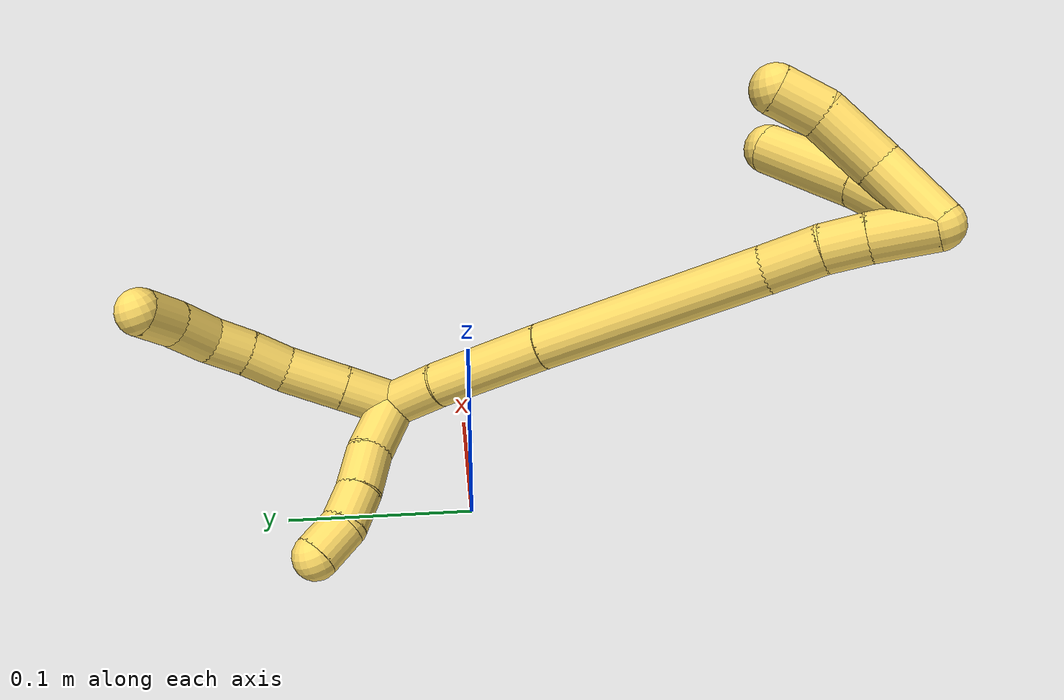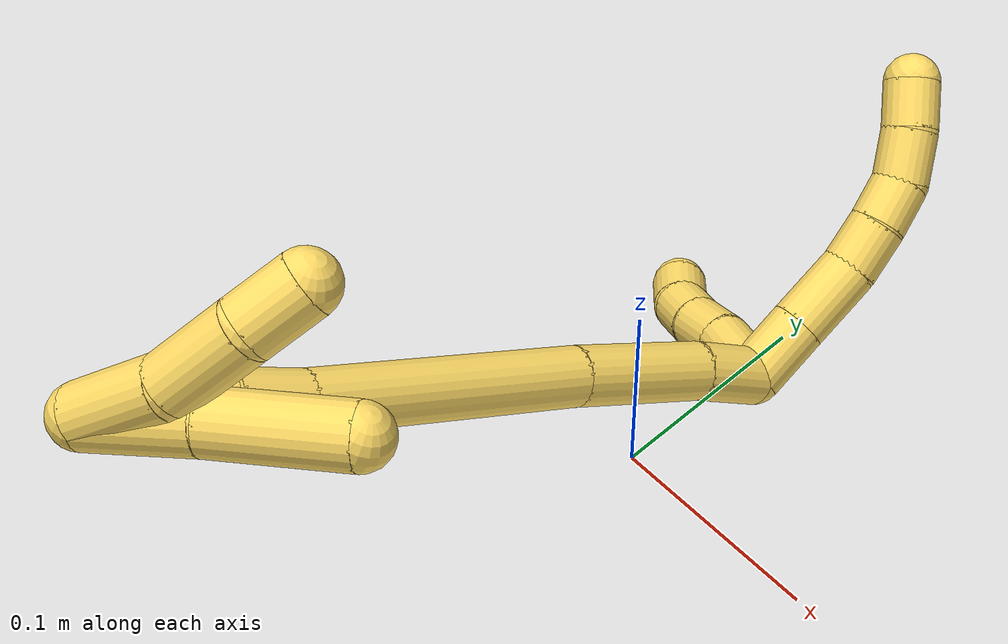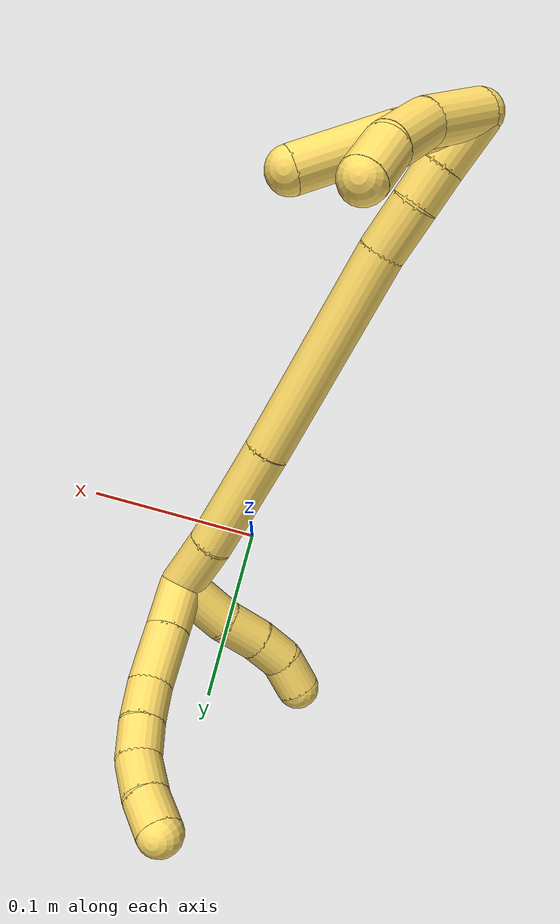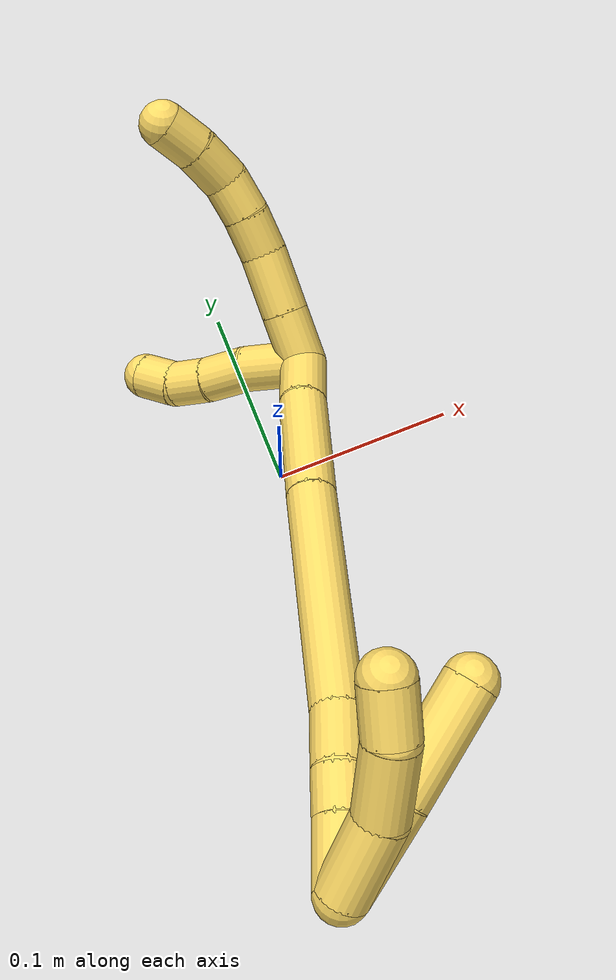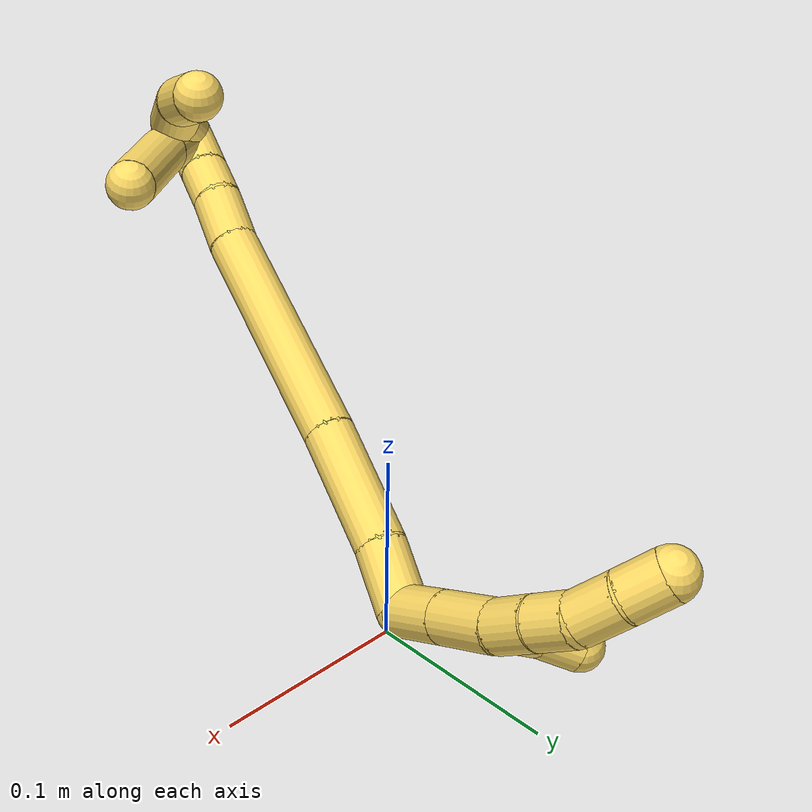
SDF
<sdf version="1.7">
 <world name="default">
  <model name="5">
   <static>0</static>
   <link name="5">
    <collision name="collision-cylinder-e_1_2_8">
     <pose>-0.003847 0.010294 0.009465 -0.827285 -0.268438 0.11841</pose>
     <geometry><cylinder><radius>0.0125</radius><length>0.029007</length></cylinder></geometry>
     <surface>
      <friction><ode><mu>1.16</mu><mu2>1.16</mu2><slip1>0</slip1><slip2>0</slip2></ode></friction>
      <contact><ode><kp>1e+06</kp><kd>1</kd><max_vel>0</max_vel><min_depth>0.001</min_depth></ode></contact>
     </surface>
    </collision>
    <visual name="visual-cylinder-e_1_2_8">
     <pose>-0.003847 0.010294 0.009465 -0.827285 -0.268438 0.11841</pose>
     <geometry><cylinder><radius>0.0125</radius><length>0.029007</length></cylinder></geometry>
     <material><ambient>1 0.858824 0.4 1</ambient></material>
    </visual>
    <collision name="collision-cylinder-e_2_8_9">
     <pose>-0.012025 0.032488 0.029749 -0.833037 -0.263058 0.11692</pose>
     <geometry><cylinder><radius>0.0125</radius><length>0.033312</length></cylinder></geometry>
     <surface>
      <friction><ode><mu>1.16</mu><mu2>1.16</mu2><slip1>0</slip1><slip2>0</slip2></ode></friction>
      <contact><ode><kp>1e+06</kp><kd>1</kd><max_vel>0</max_vel><min_depth>0.001</min_depth></ode></contact>
     </surface>
    </collision>
    <visual name="visual-cylinder-e_2_8_9">
     <pose>-0.012025 0.032488 0.029749 -0.833037 -0.263058 0.11692</pose>
     <geometry><cylinder><radius>0.0125</radius><length>0.033312</length></cylinder></geometry>
     <material><ambient>1 0.858824 0.4 1</ambient></material>
    </visual>
    <collision name="collision-cylinder-e_3_9_10">
     <pose>-0.020349 0.050843 0.048805 -0.664521 -0.364538 0.127025</pose>
     <geometry><cylinder><radius>0.0125</radius><length>0.022401</length></cylinder></geometry>
     <surface>
      <friction><ode><mu>1.16</mu><mu2>1.16</mu2><slip1>0</slip1><slip2>0</slip2></ode></friction>
      <contact><ode><kp>1e+06</kp><kd>1</kd><max_vel>0</max_vel><min_depth>0.001</min_depth></ode></contact>
     </surface>
    </collision>
    <visual name="visual-cylinder-e_3_9_10">
     <pose>-0.020349 0.050843 0.048805 -0.664521 -0.364538 0.127025</pose>
     <geometry><cylinder><radius>0.0125</radius><length>0.022401</length></cylinder></geometry>
     <material><ambient>1 0.858824 0.4 1</ambient></material>
    </visual>
    <collision name="collision-cylinder-e_4_10_11">
     <pose>-0.029009 0.063325 0.064172 -0.701973 -0.463567 0.172411</pose>
     <geometry><cylinder><radius>0.0125</radius><length>0.020876</length></cylinder></geometry>
     <surface>
      <friction><ode><mu>1.16</mu><mu2>1.16</mu2><slip1>0</slip1><slip2>0</slip2></ode></friction>
      <contact><ode><kp>1e+06</kp><kd>1</kd><max_vel>0</max_vel><min_depth>0.001</min_depth></ode></contact>
     </surface>
    </collision>
    <visual name="visual-cylinder-e_4_10_11">
     <pose>-0.029009 0.063325 0.064172 -0.701973 -0.463567 0.172411</pose>
     <geometry><cylinder><radius>0.0125</radius><length>0.020876</length></cylinder></geometry>
     <material><ambient>1 0.858824 0.4 1</ambient></material>
    </visual>
    <collision name="collision-cylinder-e_5_11_12">
     <pose>-0.041065 0.072842 0.079548 -0.400202 -0.689809 0.145471</pose>
     <geometry><cylinder><radius>0.0125</radius><length>0.023219</length></cylinder></geometry>
     <surface>
      <friction><ode><mu>1.16</mu><mu2>1.16</mu2><slip1>0</slip1><slip2>0</slip2></ode></friction>
      <contact><ode><kp>1e+06</kp><kd>1</kd><max_vel>0</max_vel><min_depth>0.001</min_depth></ode></contact>
     </surface>
    </collision>
    <visual name="visual-cylinder-e_5_11_12">
     <pose>-0.041065 0.072842 0.079548 -0.400202 -0.689809 0.145471</pose>
     <geometry><cylinder><radius>0.0125</radius><length>0.023219</length></cylinder></geometry>
     <material><ambient>1 0.858824 0.4 1</ambient></material>
    </visual>
    <collision name="collision-cylinder-e_6_12_6">
     <pose>-0.056354 0.078978 0.094335 -0.384611 -0.841933 0.173918</pose>
     <geometry><cylinder><radius>0.0125</radius><length>0.021185</length></cylinder></geometry>
     <surface>
      <friction><ode><mu>1.16</mu><mu2>1.16</mu2><slip1>0</slip1><slip2>0</slip2></ode></friction>
      <contact><ode><kp>1e+06</kp><kd>1</kd><max_vel>0</max_vel><min_depth>0.001</min_depth></ode></contact>
     </surface>
    </collision>
    <visual name="visual-cylinder-e_6_12_6">
     <pose>-0.056354 0.078978 0.094335 -0.384611 -0.841933 0.173918</pose>
     <geometry><cylinder><radius>0.0125</radius><length>0.021185</length></cylinder></geometry>
     <material><ambient>1 0.858824 0.4 1</ambient></material>
    </visual>
    <collision name="collision-cylinder-e_1_2_13">
     <pose>-0.014411 0.005677 -0.006998 -2.46003 -1.01201 2.00304</pose>
     <geometry><cylinder><radius>0.0125</radius><length>0.033993</length></cylinder></geometry>
     <surface>
      <friction><ode><mu>1.16</mu><mu2>1.16</mu2><slip1>0</slip1><slip2>0</slip2></ode></friction>
      <contact><ode><kp>1e+06</kp><kd>1</kd><max_vel>0</max_vel><min_depth>0.001</min_depth></ode></contact>
     </surface>
    </collision>
    <visual name="visual-cylinder-e_1_2_13">
     <pose>-0.014411 0.005677 -0.006998 -2.46003 -1.01201 2.00304</pose>
     <geometry><cylinder><radius>0.0125</radius><length>0.033993</length></cylinder></geometry>
     <material><ambient>1 0.858824 0.4 1</ambient></material>
    </visual>
    <collision name="collision-cylinder-e_2_13_14">
     <pose>-0.03897 0.013832 -0.020206 -2.76187 -0.988077 2.45612</pose>
     <geometry><cylinder><radius>0.0125</radius><length>0.024305</length></cylinder></geometry>
     <surface>
      <friction><ode><mu>1.16</mu><mu2>1.16</mu2><slip1>0</slip1><slip2>0</slip2></ode></friction>
      <contact><ode><kp>1e+06</kp><kd>1</kd><max_vel>0</max_vel><min_depth>0.001</min_depth></ode></contact>
     </surface>
    </collision>
    <visual name="visual-cylinder-e_2_13_14">
     <pose>-0.03897 0.013832 -0.020206 -2.76187 -0.988077 2.45612</pose>
     <geometry><cylinder><radius>0.0125</radius><length>0.024305</length></cylinder></geometry>
     <material><ambient>1 0.858824 0.4 1</ambient></material>
    </visual>
    <collision name="collision-cylinder-e_3_14_15">
     <pose>-0.057796 0.019599 -0.031078 -2.52721 -0.989456 2.07843</pose>
     <geometry><cylinder><radius>0.0125</radius><length>0.020771</length></cylinder></geometry>
     <surface>
      <friction><ode><mu>1.16</mu><mu2>1.16</mu2><slip1>0</slip1><slip2>0</slip2></ode></friction>
      <contact><ode><kp>1e+06</kp><kd>1</kd><max_vel>0</max_vel><min_depth>0.001</min_depth></ode></contact>
     </surface>
    </collision>
    <visual name="visual-cylinder-e_3_14_15">
     <pose>-0.057796 0.019599 -0.031078 -2.52721 -0.989456 2.07843</pose>
     <geometry><cylinder><radius>0.0125</radius><length>0.020771</length></cylinder></geometry>
     <material><ambient>1 0.858824 0.4 1</ambient></material>
    </visual>
    <collision name="collision-cylinder-e_4_15_5">
     <pose>-0.074299 0.029205 -0.038635 -2.00069 -0.844374 1.22161</pose>
     <geometry><cylinder><radius>0.0125</radius><length>0.020931</length></cylinder></geometry>
     <surface>
      <friction><ode><mu>1.16</mu><mu2>1.16</mu2><slip1>0</slip1><slip2>0</slip2></ode></friction>
      <contact><ode><kp>1e+06</kp><kd>1</kd><max_vel>0</max_vel><min_depth>0.001</min_depth></ode></contact>
     </surface>
    </collision>
    <visual name="visual-cylinder-e_4_15_5">
     <pose>-0.074299 0.029205 -0.038635 -2.00069 -0.844374 1.22161</pose>
     <geometry><cylinder><radius>0.0125</radius><length>0.020931</length></cylinder></geometry>
     <material><ambient>1 0.858824 0.4 1</ambient></material>
    </visual>
    <collision name="collision-cylinder-e_1_2_16">
     <pose>-0.002952 -0.015741 0.002865 1.39077 -0.182436 -0.152358</pose>
     <geometry><cylinder><radius>0.0125</radius><length>0.032539</length></cylinder></geometry>
     <surface>
      <friction><ode><mu>1.16</mu><mu2>1.16</mu2><slip1>0</slip1><slip2>0</slip2></ode></friction>
      <contact><ode><kp>1e+06</kp><kd>1</kd><max_vel>0</max_vel><min_depth>0.001</min_depth></ode></contact>
     </surface>
    </collision>
    <visual name="visual-cylinder-e_1_2_16">
     <pose>-0.002952 -0.015741 0.002865 1.39077 -0.182436 -0.152358</pose>
     <geometry><cylinder><radius>0.0125</radius><length>0.032539</length></cylinder></geometry>
     <material><ambient>1 0.858824 0.4 1</ambient></material>
    </visual>
    <collision name="collision-cylinder-e_2_16_17">
     <pose>-0.009347 -0.06294 0.009282 1.45834 -0.108336 -0.096809</pose>
     <geometry><cylinder><radius>0.0125</radius><length>0.063691</length></cylinder></geometry>
     <surface>
      <friction><ode><mu>1.16</mu><mu2>1.16</mu2><slip1>0</slip1><slip2>0</slip2></ode></friction>
      <contact><ode><kp>1e+06</kp><kd>1</kd><max_vel>0</max_vel><min_depth>0.001</min_depth></ode></contact>
     </surface>
    </collision>
    <visual name="visual-cylinder-e_2_16_17">
     <pose>-0.009347 -0.06294 0.009282 1.45834 -0.108336 -0.096809</pose>
     <geometry><cylinder><radius>0.0125</radius><length>0.063691</length></cylinder></geometry>
     <material><ambient>1 0.858824 0.4 1</ambient></material>
    </visual>
    <collision name="collision-cylinder-e_3_17_18">
     <pose>-0.017806 -0.154991 0.017763 1.48965 -0.082327 -0.07591</pose>
     <geometry><cylinder><radius>0.0125</radius><length>0.121997</length></cylinder></geometry>
     <surface>
      <friction><ode><mu>1.16</mu><mu2>1.16</mu2><slip1>0</slip1><slip2>0</slip2></ode></friction>
      <contact><ode><kp>1e+06</kp><kd>1</kd><max_vel>0</max_vel><min_depth>0.001</min_depth></ode></contact>
     </surface>
    </collision>
    <visual name="visual-cylinder-e_3_17_18">
     <pose>-0.017806 -0.154991 0.017763 1.48965 -0.082327 -0.07591</pose>
     <geometry><cylinder><radius>0.0125</radius><length>0.121997</length></cylinder></geometry>
     <material><ambient>1 0.858824 0.4 1</ambient></material>
    </visual>
    <collision name="collision-cylinder-e_4_18_19">
     <pose>-0.025243 -0.229784 0.024359 1.45383 -0.1677 -0.149221</pose>
     <geometry><cylinder><radius>0.0125</radius><length>0.029004</length></cylinder></geometry>
     <surface>
      <friction><ode><mu>1.16</mu><mu2>1.16</mu2><slip1>0</slip1><slip2>0</slip2></ode></friction>
      <contact><ode><kp>1e+06</kp><kd>1</kd><max_vel>0</max_vel><min_depth>0.001</min_depth></ode></contact>
     </surface>
    </collision>
    <visual name="visual-cylinder-e_4_18_19">
     <pose>-0.025243 -0.229784 0.024359 1.45383 -0.1677 -0.149221</pose>
     <geometry><cylinder><radius>0.0125</radius><length>0.029004</length></cylinder></geometry>
     <material><ambient>1 0.858824 0.4 1</ambient></material>
    </visual>
    <collision name="collision-cylinder-e_5_19_20">
     <pose>-0.029253 -0.254758 0.026025 1.57108 -0.146536 -0.146577</pose>
     <geometry><cylinder><radius>0.0125</radius><length>0.02178</length></cylinder></geometry>
     <surface>
      <friction><ode><mu>1.16</mu><mu2>1.16</mu2><slip1>0</slip1><slip2>0</slip2></ode></friction>
      <contact><ode><kp>1e+06</kp><kd>1</kd><max_vel>0</max_vel><min_depth>0.001</min_depth></ode></contact>
     </surface>
    </collision>
    <visual name="visual-cylinder-e_5_19_20">
     <pose>-0.029253 -0.254758 0.026025 1.57108 -0.146536 -0.146577</pose>
     <geometry><cylinder><radius>0.0125</radius><length>0.02178</length></cylinder></geometry>
     <material><ambient>1 0.858824 0.4 1</ambient></material>
    </visual>
    <collision name="collision-cylinder-e_6_20_1">
     <pose>-0.033472 -0.280785 0.025308 1.61757 -0.170482 -0.178606</pose>
     <geometry><cylinder><radius>0.0125</radius><length>0.030989</length></cylinder></geometry>
     <surface>
      <friction><ode><mu>1.16</mu><mu2>1.16</mu2><slip1>0</slip1><slip2>0</slip2></ode></friction>
      <contact><ode><kp>1e+06</kp><kd>1</kd><max_vel>0</max_vel><min_depth>0.001</min_depth></ode></contact>
     </surface>
    </collision>
    <visual name="visual-cylinder-e_6_20_1">
     <pose>-0.033472 -0.280785 0.025308 1.61757 -0.170482 -0.178606</pose>
     <geometry><cylinder><radius>0.0125</radius><length>0.030989</length></cylinder></geometry>
     <material><ambient>1 0.858824 0.4 1</ambient></material>
    </visual>
    <collision name="collision-cylinder-e_1_1_21">
     <pose>-0.027832 -0.28719 0.040118 -0.518008 0.433446 -0.116544</pose>
     <geometry><cylinder><radius>0.0125</radius><length>0.039378</length></cylinder></geometry>
     <surface>
      <friction><ode><mu>1.16</mu><mu2>1.16</mu2><slip1>0</slip1><slip2>0</slip2></ode></friction>
      <contact><ode><kp>1e+06</kp><kd>1</kd><max_vel>0</max_vel><min_depth>0.001</min_depth></ode></contact>
     </surface>
    </collision>
    <visual name="visual-cylinder-e_1_1_21">
     <pose>-0.027832 -0.28719 0.040118 -0.518008 0.433446 -0.116544</pose>
     <geometry><cylinder><radius>0.0125</radius><length>0.039378</length></cylinder></geometry>
     <material><ambient>1 0.858824 0.4 1</ambient></material>
    </visual>
    <collision name="collision-cylinder-e_2_21_22">
     <pose>-0.017147 -0.269336 0.070783 -0.536615 0.136245 -0.037512</pose>
     <geometry><cylinder><radius>0.0125</radius><length>0.035564</length></cylinder></geometry>
     <surface>
      <friction><ode><mu>1.16</mu><mu2>1.16</mu2><slip1>0</slip1><slip2>0</slip2></ode></friction>
      <contact><ode><kp>1e+06</kp><kd>1</kd><max_vel>0</max_vel><min_depth>0.001</min_depth></ode></contact>
     </surface>
    </collision>
    <visual name="visual-cylinder-e_2_21_22">
     <pose>-0.017147 -0.269336 0.070783 -0.536615 0.136245 -0.037512</pose>
     <geometry><cylinder><radius>0.0125</radius><length>0.035564</length></cylinder></geometry>
     <material><ambient>1 0.858824 0.4 1</ambient></material>
    </visual>
    <collision name="collision-cylinder-e_3_22_4">
     <pose>-0.014877 -0.25154 0.094851 -0.777702 -0.011595 0.00475</pose>
     <geometry><cylinder><radius>0.0125</radius><length>0.025058</length></cylinder></geometry>
     <surface>
      <friction><ode><mu>1.16</mu><mu2>1.16</mu2><slip1>0</slip1><slip2>0</slip2></ode></friction>
      <contact><ode><kp>1e+06</kp><kd>1</kd><max_vel>0</max_vel><min_depth>0.001</min_depth></ode></contact>
     </surface>
    </collision>
    <visual name="visual-cylinder-e_3_22_4">
     <pose>-0.014877 -0.25154 0.094851 -0.777702 -0.011595 0.00475</pose>
     <geometry><cylinder><radius>0.0125</radius><length>0.025058</length></cylinder></geometry>
     <material><ambient>1 0.858824 0.4 1</ambient></material>
    </visual>
    <collision name="collision-cylinder-e_1_1_23">
     <pose>-0.022245 -0.282256 0.03596 -0.881154 0.659674 -0.320059</pose>
     <geometry><cylinder><radius>0.0125</radius><length>0.045216</length></cylinder></geometry>
     <surface>
      <friction><ode><mu>1.16</mu><mu2>1.16</mu2><slip1>0</slip1><slip2>0</slip2></ode></friction>
      <contact><ode><kp>1e+06</kp><kd>1</kd><max_vel>0</max_vel><min_depth>0.001</min_depth></ode></contact>
     </surface>
    </collision>
    <visual name="visual-cylinder-e_1_1_23">
     <pose>-0.022245 -0.282256 0.03596 -0.881154 0.659674 -0.320059</pose>
     <geometry><cylinder><radius>0.0125</radius><length>0.045216</length></cylinder></geometry>
     <material><ambient>1 0.858824 0.4 1</ambient></material>
    </visual>
    <collision name="collision-cylinder-e_2_23_3">
     <pose>0.008614 -0.250405 0.058935 -0.999753 0.669703 -0.375587</pose>
     <geometry><cylinder><radius>0.0125</radius><length>0.054784</length></cylinder></geometry>
     <surface>
      <friction><ode><mu>1.16</mu><mu2>1.16</mu2><slip1>0</slip1><slip2>0</slip2></ode></friction>
      <contact><ode><kp>1e+06</kp><kd>1</kd><max_vel>0</max_vel><min_depth>0.001</min_depth></ode></contact>
     </surface>
    </collision>
    <visual name="visual-cylinder-e_2_23_3">
     <pose>0.008614 -0.250405 0.058935 -0.999753 0.669703 -0.375587</pose>
     <geometry><cylinder><radius>0.0125</radius><length>0.054784</length></cylinder></geometry>
     <material><ambient>1 0.858824 0.4 1</ambient></material>
    </visual>
    <collision name="collision-sphere-3">
     <pose>0.025617 -0.232337 0.070542 0 -0 0</pose>
     <geometry><sphere><radius>0.0125</radius></sphere></geometry>
     <surface>
      <friction><ode><mu>1.16</mu><mu2>1.16</mu2><slip1>0</slip1><slip2>0</slip2></ode></friction>
      <contact><ode><kp>1e+06</kp><kd>1</kd><max_vel>0</max_vel><min_depth>0.001</min_depth></ode></contact>
     </surface>
    </collision>
    <visual name="visual-sphere-3">
     <pose>0.025617 -0.232337 0.070542 0 -0 0</pose>
     <geometry><sphere><radius>0.0125</radius></sphere></geometry>
     <material><ambient>1 0.858824 0.4 1</ambient></material>
    </visual>
    <collision name="collision-sphere-23">
     <pose>-0.00839 -0.268473 0.047327 0 -0 0</pose>
     <geometry><sphere><radius>0.0125</radius></sphere></geometry>
     <surface>
      <friction><ode><mu>1.16</mu><mu2>1.16</mu2><slip1>0</slip1><slip2>0</slip2></ode></friction>
      <contact><ode><kp>1e+06</kp><kd>1</kd><max_vel>0</max_vel><min_depth>0.001</min_depth></ode></contact>
     </surface>
    </collision>
    <visual name="visual-sphere-23">
     <pose>-0.00839 -0.268473 0.047327 0 -0 0</pose>
     <geometry><sphere><radius>0.0125</radius></sphere></geometry>
     <material><ambient>1 0.858824 0.4 1</ambient></material>
    </visual>
    <collision name="collision-sphere-4">
     <pose>-0.015022 -0.24275 0.103777 0 -0 0</pose>
     <geometry><sphere><radius>0.0125</radius></sphere></geometry>
     <surface>
      <friction><ode><mu>1.16</mu><mu2>1.16</mu2><slip1>0</slip1><slip2>0</slip2></ode></friction>
      <contact><ode><kp>1e+06</kp><kd>1</kd><max_vel>0</max_vel><min_depth>0.001</min_depth></ode></contact>
     </surface>
    </collision>
    <visual name="visual-sphere-4">
     <pose>-0.015022 -0.24275 0.103777 0 -0 0</pose>
     <geometry><sphere><radius>0.0125</radius></sphere></geometry>
     <material><ambient>1 0.858824 0.4 1</ambient></material>
    </visual>
    <collision name="collision-sphere-22">
     <pose>-0.014732 -0.26033 0.085924 0 -0 0</pose>
     <geometry><sphere><radius>0.0125</radius></sphere></geometry>
     <surface>
      <friction><ode><mu>1.16</mu><mu2>1.16</mu2><slip1>0</slip1><slip2>0</slip2></ode></friction>
      <contact><ode><kp>1e+06</kp><kd>1</kd><max_vel>0</max_vel><min_depth>0.001</min_depth></ode></contact>
     </surface>
    </collision>
    <visual name="visual-sphere-22">
     <pose>-0.014732 -0.26033 0.085924 0 -0 0</pose>
     <geometry><sphere><radius>0.0125</radius></sphere></geometry>
     <material><ambient>1 0.858824 0.4 1</ambient></material>
    </visual>
    <collision name="collision-sphere-21">
     <pose>-0.019562 -0.278343 0.055642 0 -0 0</pose>
     <geometry><sphere><radius>0.0125</radius></sphere></geometry>
     <surface>
      <friction><ode><mu>1.16</mu><mu2>1.16</mu2><slip1>0</slip1><slip2>0</slip2></ode></friction>
      <contact><ode><kp>1e+06</kp><kd>1</kd><max_vel>0</max_vel><min_depth>0.001</min_depth></ode></contact>
     </surface>
    </collision>
    <visual name="visual-sphere-21">
     <pose>-0.019562 -0.278343 0.055642 0 -0 0</pose>
     <geometry><sphere><radius>0.0125</radius></sphere></geometry>
     <material><ambient>1 0.858824 0.4 1</ambient></material>
    </visual>
    <collision name="collision-sphere-1">
     <pose>-0.036101 -0.296038 0.024594 0 -0 0</pose>
     <geometry><sphere><radius>0.0125</radius></sphere></geometry>
     <surface>
      <friction><ode><mu>1.16</mu><mu2>1.16</mu2><slip1>0</slip1><slip2>0</slip2></ode></friction>
      <contact><ode><kp>1e+06</kp><kd>1</kd><max_vel>0</max_vel><min_depth>0.001</min_depth></ode></contact>
     </surface>
    </collision>
    <visual name="visual-sphere-1">
     <pose>-0.036101 -0.296038 0.024594 0 -0 0</pose>
     <geometry><sphere><radius>0.0125</radius></sphere></geometry>
     <material><ambient>1 0.858824 0.4 1</ambient></material>
    </visual>
    <collision name="collision-sphere-12">
     <pose>-0.048453 0.076331 0.087796 0 -0 0</pose>
     <geometry><sphere><radius>0.0125</radius></sphere></geometry>
     <surface>
      <friction><ode><mu>1.16</mu><mu2>1.16</mu2><slip1>0</slip1><slip2>0</slip2></ode></friction>
      <contact><ode><kp>1e+06</kp><kd>1</kd><max_vel>0</max_vel><min_depth>0.001</min_depth></ode></contact>
     </surface>
    </collision>
    <visual name="visual-sphere-12">
     <pose>-0.048453 0.076331 0.087796 0 -0 0</pose>
     <geometry><sphere><radius>0.0125</radius></sphere></geometry>
     <material><ambient>1 0.858824 0.4 1</ambient></material>
    </visual>
    <collision name="collision-sphere-11">
     <pose>-0.033677 0.069354 0.071301 0 -0 0</pose>
     <geometry><sphere><radius>0.0125</radius></sphere></geometry>
     <surface>
      <friction><ode><mu>1.16</mu><mu2>1.16</mu2><slip1>0</slip1><slip2>0</slip2></ode></friction>
      <contact><ode><kp>1e+06</kp><kd>1</kd><max_vel>0</max_vel><min_depth>0.001</min_depth></ode></contact>
     </surface>
    </collision>
    <visual name="visual-sphere-11">
     <pose>-0.033677 0.069354 0.071301 0 -0 0</pose>
     <geometry><sphere><radius>0.0125</radius></sphere></geometry>
     <material><ambient>1 0.858824 0.4 1</ambient></material>
    </visual>
    <collision name="collision-sphere-10">
     <pose>-0.024342 0.057296 0.057043 0 -0 0</pose>
     <geometry><sphere><radius>0.0125</radius></sphere></geometry>
     <surface>
      <friction><ode><mu>1.16</mu><mu2>1.16</mu2><slip1>0</slip1><slip2>0</slip2></ode></friction>
      <contact><ode><kp>1e+06</kp><kd>1</kd><max_vel>0</max_vel><min_depth>0.001</min_depth></ode></contact>
     </surface>
    </collision>
    <visual name="visual-sphere-10">
     <pose>-0.024342 0.057296 0.057043 0 -0 0</pose>
     <geometry><sphere><radius>0.0125</radius></sphere></geometry>
     <material><ambient>1 0.858824 0.4 1</ambient></material>
    </visual>
    <collision name="collision-sphere-9">
     <pose>-0.016356 0.044389 0.040567 0 -0 0</pose>
     <geometry><sphere><radius>0.0125</radius></sphere></geometry>
     <surface>
      <friction><ode><mu>1.16</mu><mu2>1.16</mu2><slip1>0</slip1><slip2>0</slip2></ode></friction>
      <contact><ode><kp>1e+06</kp><kd>1</kd><max_vel>0</max_vel><min_depth>0.001</min_depth></ode></contact>
     </surface>
    </collision>
    <visual name="visual-sphere-9">
     <pose>-0.016356 0.044389 0.040567 0 -0 0</pose>
     <geometry><sphere><radius>0.0125</radius></sphere></geometry>
     <material><ambient>1 0.858824 0.4 1</ambient></material>
    </visual>
    <collision name="collision-sphere-2">
     <geometry><sphere><radius>0.0125</radius></sphere></geometry>
     <surface>
      <friction><ode><mu>1.16</mu><mu2>1.16</mu2><slip1>0</slip1><slip2>0</slip2></ode></friction>
      <contact><ode><kp>1e+06</kp><kd>1</kd><max_vel>0</max_vel><min_depth>0.001</min_depth></ode></contact>
     </surface>
    </collision>
    <visual name="visual-sphere-2">
     <geometry><sphere><radius>0.0125</radius></sphere></geometry>
     <material><ambient>1 0.858824 0.4 1</ambient></material>
    </visual>
    <collision name="collision-sphere-19">
     <pose>-0.027663 -0.243985 0.026028 0 -0 0</pose>
     <geometry><sphere><radius>0.0125</radius></sphere></geometry>
     <surface>
      <friction><ode><mu>1.16</mu><mu2>1.16</mu2><slip1>0</slip1><slip2>0</slip2></ode></friction>
      <contact><ode><kp>1e+06</kp><kd>1</kd><max_vel>0</max_vel><min_depth>0.001</min_depth></ode></contact>
     </surface>
    </collision>
    <visual name="visual-sphere-19">
     <pose>-0.027663 -0.243985 0.026028 0 -0 0</pose>
     <geometry><sphere><radius>0.0125</radius></sphere></geometry>
     <material><ambient>1 0.858824 0.4 1</ambient></material>
    </visual>
    <collision name="collision-sphere-8">
     <pose>-0.007693 0.020587 0.018931 0 -0 0</pose>
     <geometry><sphere><radius>0.0125</radius></sphere></geometry>
     <surface>
      <friction><ode><mu>1.16</mu><mu2>1.16</mu2><slip1>0</slip1><slip2>0</slip2></ode></friction>
      <contact><ode><kp>1e+06</kp><kd>1</kd><max_vel>0</max_vel><min_depth>0.001</min_depth></ode></contact>
     </surface>
    </collision>
    <visual name="visual-sphere-8">
     <pose>-0.007693 0.020587 0.018931 0 -0 0</pose>
     <geometry><sphere><radius>0.0125</radius></sphere></geometry>
     <material><ambient>1 0.858824 0.4 1</ambient></material>
    </visual>
    <collision name="collision-sphere-6">
     <pose>-0.064255 0.081625 0.100874 0 -0 0</pose>
     <geometry><sphere><radius>0.0125</radius></sphere></geometry>
     <surface>
      <friction><ode><mu>1.16</mu><mu2>1.16</mu2><slip1>0</slip1><slip2>0</slip2></ode></friction>
      <contact><ode><kp>1e+06</kp><kd>1</kd><max_vel>0</max_vel><min_depth>0.001</min_depth></ode></contact>
     </surface>
    </collision>
    <visual name="visual-sphere-6">
     <pose>-0.064255 0.081625 0.100874 0 -0 0</pose>
     <geometry><sphere><radius>0.0125</radius></sphere></geometry>
     <material><ambient>1 0.858824 0.4 1</ambient></material>
    </visual>
    <collision name="collision-sphere-13">
     <pose>-0.028823 0.011354 -0.013995 0 -0 0</pose>
     <geometry><sphere><radius>0.0125</radius></sphere></geometry>
     <surface>
      <friction><ode><mu>1.16</mu><mu2>1.16</mu2><slip1>0</slip1><slip2>0</slip2></ode></friction>
      <contact><ode><kp>1e+06</kp><kd>1</kd><max_vel>0</max_vel><min_depth>0.001</min_depth></ode></contact>
     </surface>
    </collision>
    <visual name="visual-sphere-13">
     <pose>-0.028823 0.011354 -0.013995 0 -0 0</pose>
     <geometry><sphere><radius>0.0125</radius></sphere></geometry>
     <material><ambient>1 0.858824 0.4 1</ambient></material>
    </visual>
    <collision name="collision-sphere-14">
     <pose>-0.049117 0.016311 -0.026418 0 -0 0</pose>
     <geometry><sphere><radius>0.0125</radius></sphere></geometry>
     <surface>
      <friction><ode><mu>1.16</mu><mu2>1.16</mu2><slip1>0</slip1><slip2>0</slip2></ode></friction>
      <contact><ode><kp>1e+06</kp><kd>1</kd><max_vel>0</max_vel><min_depth>0.001</min_depth></ode></contact>
     </surface>
    </collision>
    <visual name="visual-sphere-14">
     <pose>-0.049117 0.016311 -0.026418 0 -0 0</pose>
     <geometry><sphere><radius>0.0125</radius></sphere></geometry>
     <material><ambient>1 0.858824 0.4 1</ambient></material>
    </visual>
    <collision name="collision-sphere-15">
     <pose>-0.066476 0.022887 -0.035738 0 -0 0</pose>
     <geometry><sphere><radius>0.0125</radius></sphere></geometry>
     <surface>
      <friction><ode><mu>1.16</mu><mu2>1.16</mu2><slip1>0</slip1><slip2>0</slip2></ode></friction>
      <contact><ode><kp>1e+06</kp><kd>1</kd><max_vel>0</max_vel><min_depth>0.001</min_depth></ode></contact>
     </surface>
    </collision>
    <visual name="visual-sphere-15">
     <pose>-0.066476 0.022887 -0.035738 0 -0 0</pose>
     <geometry><sphere><radius>0.0125</radius></sphere></geometry>
     <material><ambient>1 0.858824 0.4 1</ambient></material>
    </visual>
    <collision name="collision-sphere-5">
     <pose>-0.082123 0.035524 -0.041532 0 -0 0</pose>
     <geometry><sphere><radius>0.0125</radius></sphere></geometry>
     <surface>
      <friction><ode><mu>1.16</mu><mu2>1.16</mu2><slip1>0</slip1><slip2>0</slip2></ode></friction>
      <contact><ode><kp>1e+06</kp><kd>1</kd><max_vel>0</max_vel><min_depth>0.001</min_depth></ode></contact>
     </surface>
    </collision>
    <visual name="visual-sphere-5">
     <pose>-0.082123 0.035524 -0.041532 0 -0 0</pose>
     <geometry><sphere><radius>0.0125</radius></sphere></geometry>
     <material><ambient>1 0.858824 0.4 1</ambient></material>
    </visual>
    <collision name="collision-sphere-16">
     <pose>-0.005903 -0.031482 0.00573 0 -0 0</pose>
     <geometry><sphere><radius>0.0125</radius></sphere></geometry>
     <surface>
      <friction><ode><mu>1.16</mu><mu2>1.16</mu2><slip1>0</slip1><slip2>0</slip2></ode></friction>
      <contact><ode><kp>1e+06</kp><kd>1</kd><max_vel>0</max_vel><min_depth>0.001</min_depth></ode></contact>
     </surface>
    </collision>
    <visual name="visual-sphere-16">
     <pose>-0.005903 -0.031482 0.00573 0 -0 0</pose>
     <geometry><sphere><radius>0.0125</radius></sphere></geometry>
     <material><ambient>1 0.858824 0.4 1</ambient></material>
    </visual>
    <collision name="collision-sphere-17">
     <pose>-0.01279 -0.094399 0.012835 0 -0 0</pose>
     <geometry><sphere><radius>0.0125</radius></sphere></geometry>
     <surface>
      <friction><ode><mu>1.16</mu><mu2>1.16</mu2><slip1>0</slip1><slip2>0</slip2></ode></friction>
      <contact><ode><kp>1e+06</kp><kd>1</kd><max_vel>0</max_vel><min_depth>0.001</min_depth></ode></contact>
     </surface>
    </collision>
    <visual name="visual-sphere-17">
     <pose>-0.01279 -0.094399 0.012835 0 -0 0</pose>
     <geometry><sphere><radius>0.0125</radius></sphere></geometry>
     <material><ambient>1 0.858824 0.4 1</ambient></material>
    </visual>
    <collision name="collision-sphere-18">
     <pose>-0.022822 -0.215583 0.02269 0 -0 0</pose>
     <geometry><sphere><radius>0.0125</radius></sphere></geometry>
     <surface>
      <friction><ode><mu>1.16</mu><mu2>1.16</mu2><slip1>0</slip1><slip2>0</slip2></ode></friction>
      <contact><ode><kp>1e+06</kp><kd>1</kd><max_vel>0</max_vel><min_depth>0.001</min_depth></ode></contact>
     </surface>
    </collision>
    <visual name="visual-sphere-18">
     <pose>-0.022822 -0.215583 0.02269 0 -0 0</pose>
     <geometry><sphere><radius>0.0125</radius></sphere></geometry>
     <material><ambient>1 0.858824 0.4 1</ambient></material>
    </visual>
    <collision name="collision-sphere-20">
     <pose>-0.030844 -0.265531 0.026022 0 -0 0</pose>
     <geometry><sphere><radius>0.0125</radius></sphere></geometry>
     <surface>
      <friction><ode><mu>1.16</mu><mu2>1.16</mu2><slip1>0</slip1><slip2>0</slip2></ode></friction>
      <contact><ode><kp>1e+06</kp><kd>1</kd><max_vel>0</max_vel><min_depth>0.001</min_depth></ode></contact>
     </surface>
    </collision>
    <visual name="visual-sphere-20">
     <pose>-0.030844 -0.265531 0.026022 0 -0 0</pose>
     <geometry><sphere><radius>0.0125</radius></sphere></geometry>
     <material><ambient>1 0.858824 0.4 1</ambient></material>
    </visual>
    <inertial>
     <pose>-0.021062 -0.119016 0.028798 0 -0 0</pose>
     <mass>0.75</mass>
     <inertia>
      <ixx>0.000209</ixx>
      <ixy>0</ixy>
      <ixz>0</ixz>
      <iyy>4.5e-05</iyy>
      <iyz>0</iyz>
      <izz>0.000185</izz>
     </inertia>
    </inertial>
   </link>
   <pose>0.029845 0.041164 0.053474 -0.351173 0.108407 -0.242969</pose>
  </model>
 </world>
</sdf>
